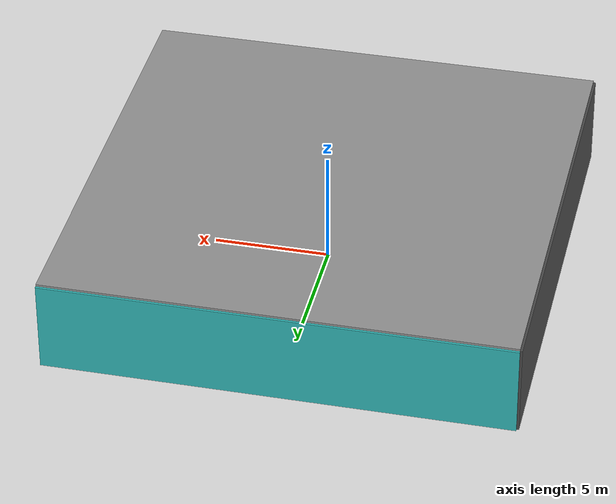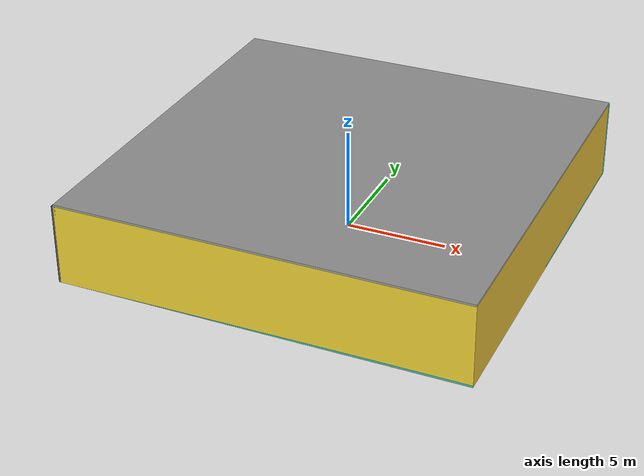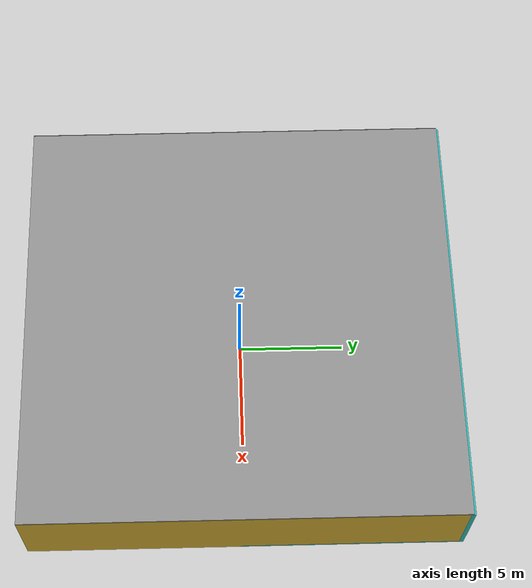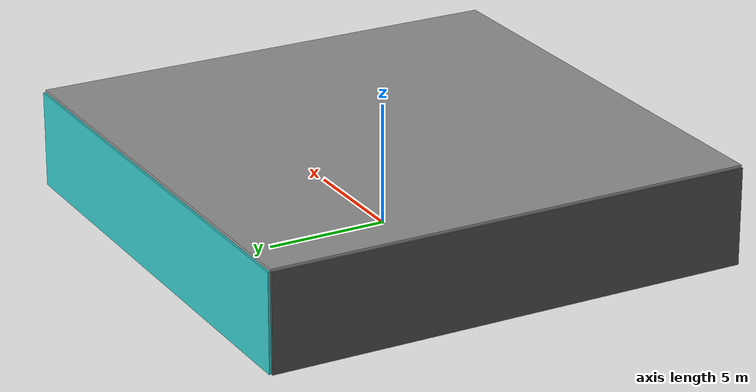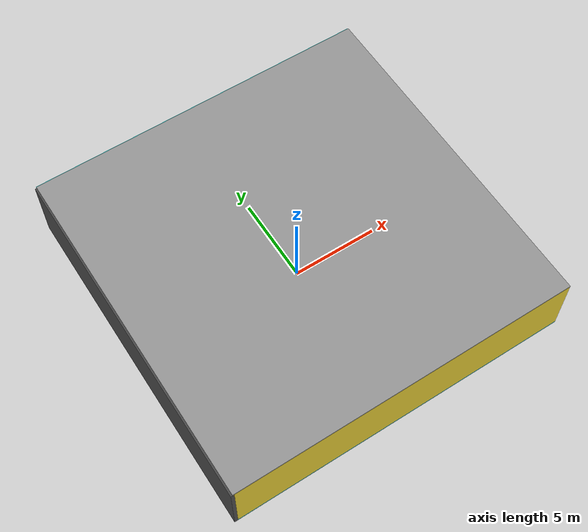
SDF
<sdf version="1.4">
 <world name="default">
  <physics type="ode">
   <max_step_size>0.001</max_step_size>
   <real_time_factor>1</real_time_factor>
   <real_time_update_rate>1000</real_time_update_rate>
   <gravity>0 0 -9.8</gravity>
  </physics>
  <scene><ambient>0.4 0.4 0.4 1</ambient><background>0.7 0.7 0.7 1</background><shadows>1</shadows></scene>
  <model name="Surrounding">
   <static>1</static>
   <link name="Ceiling">
    <collision name="Ceiling_Collision"><geometry><box><size>20 20 0.1</size></box></geometry></collision>
    <visual name="Ceiling_Visual">
     <geometry><box><size>20 20 0.1</size></box></geometry>
     <material>
      <script><uri>file://media/materials/scripts/gazebo.material</uri><name>Gazebo/Grey</name></script>
     </material>
    </visual>
    <pose>0 0 4.05 0 0 0</pose>
   </link>
   <link name="Wall_South">
    <collision name="Wall_South_Collision">
     <geometry><box><size>20 0 4</size></box></geometry>
     <pose>0 0 2 0 -0 0</pose>
    </collision>
    <visual name="Wall_South_Visual">
     <pose>0 0 2 0 -0 0</pose>
     <geometry><box><size>20 0 4</size></box></geometry>
     <material>
      <script><uri>file://media/materials/scripts/gazebo.material</uri><name>Gazebo/ZincYellow</name></script>
     </material>
    </visual>
    <velocity_decay><linear>0</linear><angular>0</angular></velocity_decay>
    <pose>0 -10 0 0 -0 0</pose>
   </link>
   <link name="Wall_East">
    <collision name="Wall_21_Collision">
     <geometry><box><size>20 0 4</size></box></geometry>
     <pose>0 0 2 0 -0 0</pose>
    </collision>
    <visual name="Wall_21_Visual">
     <pose>0 0 2 0 -0 0</pose>
     <geometry><box><size>20 0 4</size></box></geometry>
     <material>
      <script><uri>file://media/materials/scripts/gazebo.material</uri><name>Gazebo/Gold</name></script>
     </material>
    </visual>
    <velocity_decay><linear>0</linear><angular>0</angular></velocity_decay>
    <pose>10 0 0 0 -0 1.5708</pose>
   </link>
   <link name="Wall_North">
    <collision name="Wall_22_Collision">
     <geometry><box><size>20 0.2 4</size></box></geometry>
     <pose>0 0 2 0 -0 0</pose>
    </collision>
    <visual name="Wall_22_Visual">
     <pose>0 0 2 0 -0 0</pose>
     <geometry><box><size>20 0.2 4</size></box></geometry>
     <material>
      <script>
       <uri>file://media/materials/scripts/gazebo.material</uri>
       <name>Gazebo/TurquoiseGlowOutline</name>
      </script>
     </material>
    </visual>
    <velocity_decay><linear>0</linear><angular>0</angular></velocity_decay>
    <pose>0 10 0 0 -0 0</pose>
   </link>
   <link name="Wall_West">
    <collision name="Wall_23_Collision">
     <geometry><box><size>20 0.2 4</size></box></geometry>
     <pose>0 0 2 0 -0 0</pose>
    </collision>
    <visual name="Wall_23_Visual">
     <pose>0 0 2 0 -0 0</pose>
     <geometry><box><size>20 0.2 4</size></box></geometry>
     <material>
      <script><uri>file://media/materials/scripts/gazebo.material</uri><name>Gazebo/DarkGrey</name></script>
     </material>
    </visual>
    <velocity_decay><linear>0</linear><angular>0</angular></velocity_decay>
    <pose>-10 0 0 0 0 -1.5708</pose>
   </link>
   <link name="Ground_link">
    <collision name="collision">
     <pose>0 0 .05 0 -0 0</pose>
     <geometry><box><size>20 20 0.1</size></box></geometry>
    </collision>
    <visual name="visual">
     <pose>0 0 .05 0 -0 0</pose>
     <geometry><box><size>20 20 0.1</size></box></geometry>
     <material>
      <script><uri>file://media/materials/scripts/gazebo.material</uri><name>Gazebo/Turquoise</name></script>
     </material>
    </visual>
   </link>
   <static>1</static>
  </model>
  <spherical_coordinates>
   <surface_model>EARTH_WGS84</surface_model>
   <latitude_deg>0</latitude_deg>
   <longitude_deg>0</longitude_deg>
   <elevation>0</elevation>
   <heading_deg>0</heading_deg>
  </spherical_coordinates>
  <light name="lightball_0" type="diffuse">
   <diffuse>0.8 0.8 0.8 1</diffuse>
   <specular>0.2 0.2 0.2 1</specular>
   <attenuation>
    <range>100</range>
    <constant>0.7</constant>
    <linear>0.01</linear>
    <quadratic>0.001</quadratic>
   </attenuation>
   <direction>-0.5 0.1 -0.9</direction>
   <pose>-6.78185460143 -7.74033908112 1.39890757688 0 0 0</pose>
  </light>
  <light name="lightball_1" type="diffuse">
   <diffuse>0.8 0.8 0.8 1</diffuse>
   <specular>0.2 0.2 0.2 1</specular>
   <attenuation>
    <range>100</range>
    <constant>0.7</constant>
    <linear>0.01</linear>
    <quadratic>0.001</quadratic>
   </attenuation>
   <direction>-0.5 0.1 -0.9</direction>
   <pose>-7.68372584453 -5.75977615287 3.60663631878 0 0 0</pose>
  </light>
  <light name="lightball_2" type="diffuse">
   <diffuse>0.8 0.8 0.8 1</diffuse>
   <specular>0.2 0.2 0.2 1</specular>
   <attenuation>
    <range>100</range>
    <constant>0.7</constant>
    <linear>0.01</linear>
    <quadratic>0.001</quadratic>
   </attenuation>
   <direction>-0.5 0.1 -0.9</direction>
   <pose>7.92696937812 -8.13687842598 0.630576201085 0 0 0</pose>
  </light>
  <light name="lightball_3" type="diffuse">
   <diffuse>0.8 0.8 0.8 1</diffuse>
   <specular>0.2 0.2 0.2 1</specular>
   <attenuation>
    <range>100</range>
    <constant>0.7</constant>
    <linear>0.01</linear>
    <quadratic>0.001</quadratic>
   </attenuation>
   <direction>-0.5 0.1 -0.9</direction>
   <pose>-7.30461561982 -0.14589215478 3.81371372283 0 0 0</pose>
  </light>
  <light name="lightball_4" type="diffuse">
   <diffuse>0.8 0.8 0.8 1</diffuse>
   <specular>0.2 0.2 0.2 1</specular>
   <attenuation>
    <range>100</range>
    <constant>0.7</constant>
    <linear>0.01</linear>
    <quadratic>0.001</quadratic>
   </attenuation>
   <direction>-0.5 0.1 -0.9</direction>
   <pose>2.74892003593 -8.55338671158 3.8530082381 0 0 0</pose>
  </light>
  <light name="lightball_5" type="diffuse">
   <diffuse>0.8 0.8 0.8 1</diffuse>
   <specular>0.2 0.2 0.2 1</specular>
   <attenuation>
    <range>100</range>
    <constant>0.7</constant>
    <linear>0.01</linear>
    <quadratic>0.001</quadratic>
   </attenuation>
   <direction>-0.5 0.1 -0.9</direction>
   <pose>-5.72156059594 4.90187157617 1.38473743396 0 0 0</pose>
  </light>
  <light name="lightball_6" type="diffuse">
   <diffuse>0.8 0.8 0.8 1</diffuse>
   <specular>0.2 0.2 0.2 1</specular>
   <attenuation>
    <range>100</range>
    <constant>0.7</constant>
    <linear>0.01</linear>
    <quadratic>0.001</quadratic>
   </attenuation>
   <direction>-0.5 0.1 -0.9</direction>
   <pose>3.37826717261 -2.64358579882 2.4424722826 0 0 0</pose>
  </light>
  <light name="lightball_7" type="diffuse">
   <diffuse>0.8 0.8 0.8 1</diffuse>
   <specular>0.2 0.2 0.2 1</specular>
   <attenuation>
    <range>100</range>
    <constant>0.7</constant>
    <linear>0.01</linear>
    <quadratic>0.001</quadratic>
   </attenuation>
   <direction>-0.5 0.1 -0.9</direction>
   <pose>0.314861736044 3.32188940434 3.32541563953 0 0 0</pose>
  </light>
  <light name="lightball_8" type="diffuse">
   <diffuse>0.8 0.8 0.8 1</diffuse>
   <specular>0.2 0.2 0.2 1</specular>
   <attenuation>
    <range>100</range>
    <constant>0.7</constant>
    <linear>0.01</linear>
    <quadratic>0.001</quadratic>
   </attenuation>
   <direction>-0.5 0.1 -0.9</direction>
   <pose>5.24611123623 -0.285702537555 1.8423129684 0 0 0</pose>
  </light>
  <light name="lightball_9" type="diffuse">
   <diffuse>0.8 0.8 0.8 1</diffuse>
   <specular>0.2 0.2 0.2 1</specular>
   <attenuation>
    <range>100</range>
    <constant>0.7</constant>
    <linear>0.01</linear>
    <quadratic>0.001</quadratic>
   </attenuation>
   <direction>-0.5 0.1 -0.9</direction>
   <pose>7.46682634214 7.81743478016 0.622335366202 0 0 0</pose>
  </light>
  <light name="lightball_10" type="diffuse">
   <diffuse>0.8 0.8 0.8 1</diffuse>
   <specular>0.2 0.2 0.2 1</specular>
   <attenuation>
    <range>100</range>
    <constant>0.7</constant>
    <linear>0.01</linear>
    <quadratic>0.001</quadratic>
   </attenuation>
   <direction>-0.5 0.1 -0.9</direction>
   <pose>7.69480951181 2.64981732768 1.44825888471 0 0 0</pose>
  </light>
  <light name="lightball_11" type="diffuse">
   <diffuse>0.8 0.8 0.8 1</diffuse>
   <specular>0.2 0.2 0.2 1</specular>
   <attenuation>
    <range>100</range>
    <constant>0.7</constant>
    <linear>0.01</linear>
    <quadratic>0.001</quadratic>
   </attenuation>
   <direction>-0.5 0.1 -0.9</direction>
   <pose>9.708585123 9.67796923885 1.33335848536 0 0 0</pose>
  </light>
  <include><uri>model://table</uri><pose>-3.35595211332 -6.3188939984 0 0 0 0.907013941646</pose></include>
  <include><uri>model://cabinet</uri><pose>-4.74280809834 -5.41343571741 0 0 0 0.250141779988</pose></include>
  <include><uri>model://cabinet</uri><pose>-3.4496642859 6.66825384539 0 0 0 3.08657959441</pose></include>
  <include>
   <uri>model://robocup_3Dsim_goal</uri>
   <pose>-2.61665943763 0.407670916604 0 0 0 2.78298574944</pose>
  </include>
  <include>
   <uri>model://construction_cone</uri>
   <pose>0.320729026001 6.47632359626 0 0 0 1.04068322352</pose>
  </include>
  <include>
   <uri>model://textured_shapes</uri>
   <pose>3.61013233091 -3.51694069169 0 0 0 1.41881359514</pose>
  </include>
 </world>
</sdf>

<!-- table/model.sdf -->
<sdf version="1.5">
  <model name="table">
    <static>true</static>
    <link name="link">
      <collision name="surface">
        <pose>0 0 1.0 0 0 0</pose>
        <geometry>
          <box>
            <size>1.5 0.8 0.03</size>
          </box>
        </geometry>
        <surface>
          <friction>
            <ode>
              <mu>0.6</mu>
              <mu2>0.6</mu2>
            </ode>
          </friction>
        </surface>
      </collision>
      <visual name="visual1">
        <pose>0 0 1.0 0 0 0</pose>
        <geometry>
          <box>
            <size>1.5 0.8 0.03</size>
          </box>
        </geometry>
        <material>
          <script>
            <uri>model://media/materials/scripts/gazebo.material</uri>
            <name>Gazebo/Wood</name>
          </script>
        </material>
      </visual>
      <collision name="front_left_leg">
        <pose>0.68 0.38 0.5 0 0 0</pose>
        <geometry>
          <cylinder>
            <radius>0.02</radius>
            <length>1.0</length>
          </cylinder>
        </geometry>
      </collision>
      <visual name="front_left_leg">
        <pose>0.68 0.38 0.5 0 0 0</pose>
        <geometry>
          <cylinder>
            <radius>0.02</radius>
            <length>1.0</length>
          </cylinder>
        </geometry>
        <material>
          <script>
            <uri>model://media/materials/scripts/gazebo.material</uri>
            <name>Gazebo/Grey</name>
          </script>
        </material>
      </visual>
      <collision name="front_right_leg">
        <pose>0.68 -0.38 0.5 0 0 0</pose>
        <geometry>
          <cylinder>
            <radius>0.02</radius>
            <length>1.0</length>
          </cylinder>
        </geometry>
      </collision>
      <visual name="front_right_leg">
        <pose>0.68 -0.38 0.5 0 0 0</pose>
        <geometry>
          <cylinder>
            <radius>0.02</radius>
            <length>1.0</length>
          </cylinder>
        </geometry>
        <material>
          <script>
            <uri>model://media/materials/scripts/gazebo.material</uri>
            <name>Gazebo/Grey</name>
          </script>
        </material>
      </visual>
      <collision name="back_right_leg">
        <pose>-0.68 -0.38 0.5 0 0 0</pose>
        <geometry>
          <cylinder>
            <radius>0.02</radius>
            <length>1.0</length>
          </cylinder>
        </geometry>
      </collision>
      <visual name="back_right_leg">
        <pose>-0.68 -0.38 0.5 0 0 0</pose>
        <geometry>
          <cylinder>
            <radius>0.02</radius>
            <length>1.0</length>
          </cylinder>
        </geometry>
        <material>
          <script>
            <uri>model://media/materials/scripts/gazebo.material</uri>
            <name>Gazebo/Grey</name>
          </script>
        </material>
      </visual>
      <collision name="back_left_leg">
        <pose>-0.68 0.38 0.5 0 0 0</pose>
        <geometry>
          <cylinder>
            <radius>0.02</radius>
            <length>1.0</length>
          </cylinder>
        </geometry>
      </collision>
      <visual name="back_left_leg">
        <pose>-0.68 0.38 0.5 0 0 0</pose>
        <geometry>
          <cylinder>
            <radius>0.02</radius>
            <length>1.0</length>
          </cylinder>
        </geometry>
        <material>
          <script>
            <uri>model://media/materials/scripts/gazebo.material</uri>
            <name>Gazebo/Grey</name>
          </script>
        </material>
      </visual>
    </link>
  </model>
</sdf>

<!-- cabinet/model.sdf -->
<sdf version="1.5">
  <model name="cabinet">
    <static>true</static>
    <link name="cabinet_bottom_plate">
      <inertial>
        <pose>0 0 -1 0 0 0</pose>
        <inertia>
          <ixx>2.050000</ixx>
          <ixy>0</ixy>
          <ixz>0</ixz>
          <iyy>2.050000</iyy>
          <iyz>0</iyz>
          <izz>2.050000</izz>
        </inertia>
        <mass>25.000000</mass>
      </inertial>
      <collision name="cabinet_bottom_plate_geom">
        <pose>0 0 0.010000 0 0 0</pose>
        <geometry>
          <box>
            <size>0.450000 0.450000 0.020000</size>
          </box>
        </geometry>
      </collision>
      <visual name="cabinet_bottom_plate_geom_visual">
        <pose>0 0 0.010000 0 0 0</pose>
        <geometry>
          <box>
            <size>0.450000 0.450000 0.020000</size>
          </box>
        </geometry>
        <material>
          <script>
            <uri>model://media/materials/scripts/gazebo.material</uri>
            <name>Gazebo/Wood</name>
          </script>
        </material>
      </visual>
      <collision name="cabinet_bottom_plate_geom_cabinet_back_plate">
        <pose>0.235000 0 0.510000 0 0 0</pose>
        <geometry>
          <box>
            <size>0.020000 0.450000 1.020000</size>
          </box>
        </geometry>
      </collision>
      <visual name="cabinet_bottom_plate_geom_cabinet_back_plate_visual">
        <pose>0.235000 0 0.510000 0 0 0</pose>
        <geometry>
          <box>
            <size>0.020000 0.450000 1.020000</size>
          </box>
        </geometry>
        <material>
          <script>
            <uri>model://media/materials/scripts/gazebo.material</uri>
            <name>Gazebo/Wood</name>
          </script>
        </material>
      </visual>
      <collision name="cabinet_bottom_plate_geom_cabinet_left_plate">
        <pose>0 0.235000 0.510000 0 0 0</pose>
        <geometry>
          <box>
            <size>0.450000 0.020000 1.020000</size>
          </box>
        </geometry>
      </collision>
      <visual name="cabinet_bottom_plate_geom_cabinet_left_plate_visual">
        <pose>0 0.235000 0.510000 0 0 0</pose>
        <geometry>
          <box>
            <size>0.450000 0.020000 1.020000</size>
          </box>
        </geometry>
        <material>
          <script>
            <uri>model://media/materials/scripts/gazebo.material</uri>
            <name>Gazebo/Wood</name>
          </script>
        </material>
      </visual>
      <collision name="cabinet_bottom_plate_geom_cabinet_middle_plate">
        <pose>0 0 0.510000 0 0 0</pose>
        <geometry>
          <box>
            <size>0.450000 0.450000 0.020000</size>
          </box>
        </geometry>
      </collision>
      <visual name="cabinet_bottom_plate_geom_cabinet_middle_plate_visual">
        <pose>0 0 0.510000 0 0 0</pose>
        <geometry>
          <box>
            <size>0.450000 0.450000 0.020000</size>
          </box>
        </geometry>
        <material>
          <script>
            <uri>model://media/materials/scripts/gazebo.material</uri>
            <name>Gazebo/Wood</name>
          </script>
        </material>
      </visual>
      <collision name="cabinet_bottom_plate_geom_cabinet_right_plate">
        <pose>0 -0.235000 0.510000 0 0 0</pose>
        <geometry>
          <box>
            <size>0.450000 0.020000 1.020000</size>
          </box>
        </geometry>
      </collision>
      <visual name="cabinet_bottom_plate_geom_cabinet_right_plate_visual">
        <pose>0 -0.235000 0.510000 0 0 0</pose>
        <geometry>
          <box>
            <size>0.450000 0.020000 1.020000</size>
          </box>
        </geometry>
        <material>
          <script>
            <uri>model://media/materials/scripts/gazebo.material</uri>
            <name>Gazebo/Wood</name>
          </script>
        </material>
      </visual>
      <collision name="cabinet_bottom_plate_geom_cabinet_top_plate">
        <pose>0 0 1.010000 0 0 0</pose>
        <geometry>
          <box>
            <size>0.450000 0.450000 0.020000</size>
          </box>
        </geometry>
      </collision>
      <visual name="cabinet_bottom_plate_geom_cabinet_top_plate_visual">
        <pose>0 0 1.010000 0 0 0</pose>
        <geometry>
          <box>
            <size>0.450000 0.450000 0.020000</size>
          </box>
        </geometry>
        <material>
          <script>
            <uri>model://media/materials/scripts/gazebo.material</uri>
            <name>Gazebo/Wood</name>
          </script>
        </material>
      </visual>
    </link>
  </model>
</sdf>

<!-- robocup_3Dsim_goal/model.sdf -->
<sdf version="1.5">
  <model name="robocup_3d_goal">
    <static>true</static>
    <link name="left_post">
      <pose>0 1.05 0.45 0 0 0</pose>
      <collision name="collision">
        <geometry>
          <cylinder>
            <radius>0.05</radius>
            <length>0.9</length>
          </cylinder>
        </geometry>
      </collision>
      <visual name="visual">
        <geometry>
          <cylinder>
            <radius>0.05</radius>
            <length>0.9</length>
          </cylinder>
        </geometry>
        <material>
          <script>
            <uri>file://media/materials/scripts/gazebo.material</uri>
            <name>Gazebo/ZincYellow</name>
          </script>
        </material>
      </visual>
    </link>
    <link name="left_support_horiz_lower">
      <pose>0.30 1.05 0.01 0 0 0</pose>
      <collision name="collision">
        <geometry>
          <box>
            <size>0.50 0.02 0.02</size>
          </box>
        </geometry>
      </collision>
      <visual name="visual">
        <geometry>
          <box>
            <size>0.50 0.02 0.02</size>
          </box>
        </geometry>
        <material>
          <script>
            <uri>file://media/materials/scripts/gazebo.material</uri>
            <name>Gazebo/White</name>
          </script>
        </material>
      </visual>
    </link>
    <link name="left_support_horiz_upper">
      <pose>0.30 1.05 0.79 0 0 0</pose>
      <collision name="collision">
        <geometry>
          <box>
            <size>0.50 0.02 0.02</size>
          </box>
        </geometry>
      </collision>
      <visual name="visual">
        <geometry>
          <box>
            <size>0.50 0.02 0.02</size>
          </box>
        </geometry>
        <material>
          <script>
            <uri>file://media/materials/scripts/gazebo.material</uri>
            <name>Gazebo/White</name>
          </script>
        </material>
      </visual>
    </link>
    <link name="left_support_vertical">
      <pose>0.56 1.05 0.4 0 1.5708 0</pose>
      <collision name="collision">
        <geometry>
          <box>
            <size>0.80 0.02 0.02</size>
          </box>
        </geometry>
      </collision>
      <visual name="visual">
        <geometry>
          <box>
            <size>0.80 0.02 0.02</size>
          </box>
        </geometry>
        <material>
          <script>
            <uri>file://media/materials/scripts/gazebo.material</uri>
            <name>Gazebo/White</name>
          </script>
        </material>
      </visual>
    </link>
    <link name="right_support_horiz_lower">
      <pose>0.30 -1.05 0.01 0 0 0</pose>
      <collision name="collision">
        <geometry>
          <box>
            <size>0.50 0.02 0.02</size>
          </box>
        </geometry>
      </collision>
      <visual name="visual">
        <geometry>
          <box>
            <size>0.50 0.02 0.02</size>
          </box>
        </geometry>
        <material>
          <script>
            <uri>file://media/materials/scripts/gazebo.material</uri>
            <name>Gazebo/White</name>
          </script>
        </material>
      </visual>
    </link>
    <link name="right_support_horiz_upper">
      <pose>0.30 -1.05 0.79 0 0 0</pose>
      <collision name="collision">
        <geometry>
          <box>
            <size>0.50 0.02 0.02</size>
          </box>
        </geometry>
      </collision>
      <visual name="visual">
        <geometry>
          <box>
            <size>0.50 0.02 0.02</size>
          </box>
        </geometry>
        <material>
          <script>
            <uri>file://media/materials/scripts/gazebo.material</uri>
            <name>Gazebo/White</name>
          </script>
        </material>
      </visual>
    </link>
    <link name="right_support_vertical">
      <pose>0.56 -1.05 0.4 0 1.5708 0</pose>
      <collision name="collision">
        <geometry>
          <box>
            <size>0.80 0.02 0.02</size>
          </box>
        </geometry>
      </collision>
      <visual name="visual">
        <geometry>
          <box>
            <size>0.80 0.02 0.02</size>
          </box>
        </geometry>
        <material>
          <script>
            <uri>file://media/materials/scripts/gazebo.material</uri>
            <name>Gazebo/White</name>
          </script>
        </material>
      </visual>
    </link>
    <link name="center_support_horiz_lower">
      <pose>0.56 0 0.01 0 1.5708 0</pose>
      <collision name="collision">
        <geometry>
          <box>
            <size>0.02 2.08 0.02</size>
          </box>
        </geometry>
      </collision>
      <visual name="visual">
        <geometry>
          <box>
            <size>0.02 2.08 0.02</size>
          </box>
        </geometry>
        <material>
          <script>
            <uri>file://media/materials/scripts/gazebo.material</uri>
            <name>Gazebo/White</name>
          </script>
        </material>
      </visual>
    </link>
    <link name="center_support_horiz_upper">
      <pose>0.56 0 0.79 0 1.5708 0</pose>
      <collision name="collision">
        <geometry>
          <box>
            <size>0.02 2.08 0.02</size>
          </box>
        </geometry>
      </collision>
      <visual name="visual">
        <geometry>
          <box>
            <size>0.02 2.08 0.02</size>
          </box>
        </geometry>
        <material>
          <script>
            <uri>file://media/materials/scripts/gazebo.material</uri>
            <name>Gazebo/White</name>
          </script>
        </material>
      </visual>
    </link>
    <link name="right_post">
      <pose>0 -1.05 0.45 0 0 0</pose>
      <collision name="collision">
        <geometry>
          <cylinder>
            <radius>0.05</radius>
            <length>0.9</length>
          </cylinder>
        </geometry>
      </collision>
      <visual name="visual">
        <geometry>
          <cylinder>
            <radius>0.05</radius>
            <length>0.9</length>
          </cylinder>
        </geometry>
        <material>
          <script>
            <uri>file://media/materials/scripts/gazebo.material</uri>
            <name>Gazebo/ZincYellow</name>
          </script>
        </material>
      </visual>
    </link>
    <link name="crossbar">
      <pose>0 0 0.85 1.57 1.57 0</pose>
      <collision name="collision">
        <geometry>
          <cylinder>
            <radius>0.05</radius>
            <length>2.0</length>
          </cylinder>
        </geometry>
      </collision>
      <visual name="visual">
        <geometry>
          <cylinder>
            <radius>0.05</radius>
            <length>2.0</length>
          </cylinder>
        </geometry>
        <material>
          <script>
            <uri>file://media/materials/scripts/gazebo.material</uri>
            <name>Gazebo/ZincYellow</name>
          </script>
        </material>
      </visual>
    </link>
    <link name="center_net">
      <pose>0.56 0 0.40 0 0 0</pose>
      <collision name="collision">
        <geometry>
          <box>
            <size>0.01 2.1 0.80</size>
          </box>
        </geometry>
      </collision>
      <visual name="visual">
        <geometry>
          <box>
            <size>0.01 2.1 0.80</size>
          </box>
        </geometry>
        <material>
          <script>
            <uri>model://../model_source/models/robocup09_spl_field/materials/scripts/</uri>
            <uri>model://../model_source/models/robocup09_spl_field/materials/textures/</uri>
            <name>RoboCup/Net</name>
          </script>
        </material>
      </visual>
    </link>
    <link name="left_net">
      <pose>0.30 1.05 0.40 0 0 0</pose>
      <collision name="collision">
        <geometry>
          <box>
            <size>0.50 0.01 0.76</size>
          </box>
        </geometry>
      </collision>
      <visual name="visual">
        <geometry>
          <box>
            <size>0.50 0.01 0.76</size>
          </box>
        </geometry>
        <material>
          <script>
            <uri>model://../model_source/models/robocup09_spl_field/materials/scripts/</uri>
            <uri>model://../model_source/models/robocup09_spl_field/materials/textures/</uri>
            <name>RoboCup/Net</name>
          </script>
        </material>
      </visual>
    </link>
    <link name="right_net">
      <pose>0.30 -1.05 0.40 0 0 0</pose>
      <collision name="collision">
        <geometry>
          <box>
            <size>0.50 0.01 0.76</size>
          </box>
        </geometry>
      </collision>
      <visual name="visual">
        <geometry>
          <box>
            <size>0.50 0.01 0.76</size>
          </box>
        </geometry>
        <material>
          <script>
            <uri>model://../model_source/models/robocup09_spl_field/materials/scripts/</uri>
            <uri>model://../model_source/models/robocup09_spl_field/materials/textures/</uri>
            <name>RoboCup/Net</name>
          </script>
        </material>
      </visual>
    </link>
  </model>
</sdf>

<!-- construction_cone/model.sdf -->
<sdf version="1.5">
  <model name="Construction Cone">
    <link name="link">
      <collision name="collision">
        <geometry>
          <mesh>
            <scale>10 10 10</scale>
            <uri>file://isr-testbed/construction_cone/meshes/construction_cone.dae</uri>
          </mesh>
        </geometry>
      </collision>
      <visual name="visual">
        <geometry>
          <mesh>
            <scale>10 10 10</scale>
            <uri>file://isr-testbed/construction_cone/meshes/construction_cone.dae</uri>
          </mesh>
        </geometry>
      </visual>
    </link>
  </model>
</sdf>

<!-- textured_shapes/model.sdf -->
<sdf version="1.6">
  <model name="textured_shapes">
    <pose>0 0 0.5 0 0 0</pose>
    <link name="box">
      <pose>0 -1.5 0 0 0 0</pose>
      <collision name="collision">
        <geometry>
          <box>
            <size>1 1 1</size>
          </box>
        </geometry>
      </collision>
      <visual name="visual">
        <geometry>
          <box>
            <size>1 1 1</size>
          </box>
        </geometry>
        <material>
          <script>
            <uri>model://../model_source/models/textured_shapes/materials/scripts</uri>
            <uri>model://../model_source/models/textured_shapes/materials/textures</uri>
            <name>TexturedShape/Squares</name>
          </script>
        </material>
      </visual>
    </link>
    <link name="sphere">
      <collision name="collision">
        <geometry>
          <sphere>
            <radius>0.5</radius>
          </sphere>
        </geometry>
      </collision>
      <visual name="visual">
        <geometry>
          <sphere>
            <radius>0.5</radius>
          </sphere>
        </geometry>
        <material>
          <script>
            <uri>model://../model_source/models/textured_shapes/materials/scripts</uri>
            <uri>model://../model_source/models/textured_shapes/materials/textures</uri>
            <name>TexturedShape/Squares</name>
          </script>
        </material>
      </visual>
    </link>
    <link name="cylinder">
      <pose>0 1.5 0 0 0 0</pose>
      <collision name="collision">
        <geometry>
          <cylinder>
            <radius>0.5</radius>
            <length>1</length>
          </cylinder>
        </geometry>
      </collision>
      <visual name="visual">
        <geometry>
          <cylinder>
            <radius>0.5</radius>
            <length>1</length>
          </cylinder>
        </geometry>
        <material>
          <script>
            <uri>model://../model_source/models/textured_shapes/materials/scripts</uri>
            <uri>model://../model_source/models/textured_shapes/materials/textures</uri>
            <name>TexturedShape/Squares</name>
          </script>
        </material>
      </visual>
    </link>
  </model>
</sdf>
